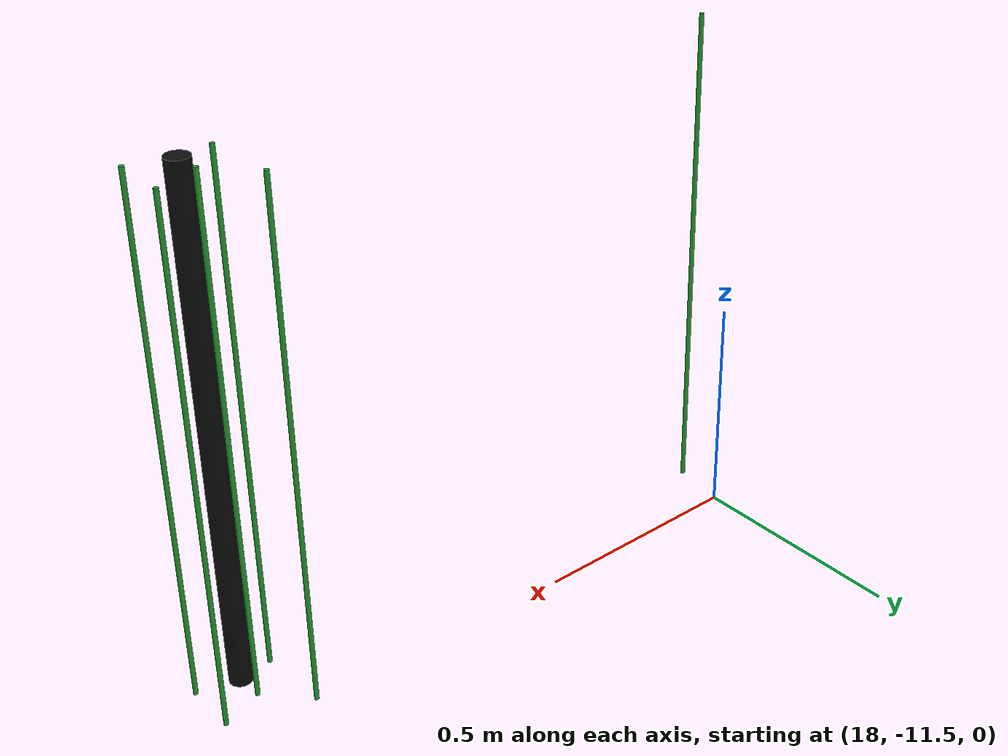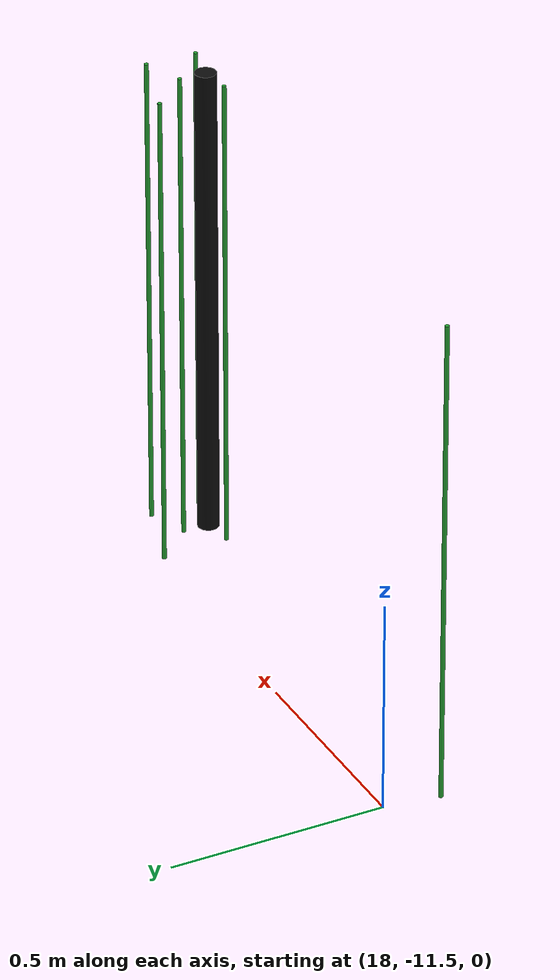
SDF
<sdf version="1.6">
 <world name="default">
  <model name="pole_9">
   <static>1</static>
   <pose>19.19 -11.68 0.575 0 -0 0</pose>
   <link name="link">
    <collision name="collision">
     <geometry><cylinder><length>1.15</length><radius>0.025</radius></cylinder></geometry>
    </collision>
    <visual name="visual">
     <geometry><cylinder><length>1.15</length><radius>0.025</radius></cylinder></geometry>
     <material>
      <script><uri>file://media/materials/scripts/gazebo.material</uri><name>Gazebo/Chrome</name></script>
      <shader type="vertex"><normal_map>__default__</normal_map></shader>
      <emissive>0.1 0.1 0.1 1</emissive>
      <specular>0.01 0.01 0.01 1</specular>
      <ambient>0.5 0.5 0.5 1</ambient>
      <diffuse>0.05 0.05 0.05 1</diffuse>
     </material>
    </visual>
   </link>
  </model>
  <model name="pole_27_clone_clone_4">
   <link name="link">
    <inertial>
     <mass>1</mass>
     <inertia><ixx>1</ixx><ixy>0</ixy><ixz>0</ixz><iyy>1</iyy><iyz>0</iyz><izz>1</izz></inertia>
    </inertial>
    <visual name="visual">
     <geometry><cylinder><length>1.15</length><radius>0.005</radius></cylinder></geometry>
     <material>
      <script><uri>file://media/materials/scripts/gazebo.material</uri><name>Gazebo/Green</name></script>
      <shader type="vertex"><normal_map>__default__</normal_map></shader>
      <emissive>0 0.1 0 1</emissive>
      <specular>0 0.01 0 1</specular>
      <ambient>0 0.5 0 1</ambient>
      <diffuse>0 0.05 0 1</diffuse>
     </material>
    </visual>
    <collision name="collision">
     <geometry><cylinder><radius>0.005</radius><length>1.15</length></cylinder></geometry>
     <surface>
      <friction>
       <ode><mu>1</mu><mu2>1</mu2><fdir1>0 0 0</fdir1><slip1>0</slip1><slip2>0</slip2></ode>
       <torsional>
        <coefficient>1</coefficient>
        <patch_radius>0</patch_radius>
        <surface_radius>0</surface_radius>
        <use_patch_radius>1</use_patch_radius>
        <ode><slip>0</slip></ode>
       </torsional>
      </friction>
      <bounce><restitution_coefficient>0</restitution_coefficient><threshold>1e+06</threshold></bounce>
      <contact>
       <collide_without_contact>0</collide_without_contact>
       <collide_without_contact_bitmask>1</collide_without_contact_bitmask>
       <collide_bitmask>1</collide_bitmask>
       <ode>
        <soft_cfm>0</soft_cfm>
        <soft_erp>0.2</soft_erp>
        <kp>1e+13</kp>
        <kd>1</kd>
        <max_vel>0.01</max_vel>
        <min_depth>0</min_depth>
       </ode>
       <bullet>
        <split_impulse>1</split_impulse>
        <split_impulse_penetration_threshold>-0.01</split_impulse_penetration_threshold>
        <soft_cfm>0</soft_cfm>
        <soft_erp>0.2</soft_erp>
        <kp>1e+13</kp>
        <kd>1</kd>
       </bullet>
      </contact>
     </surface>
    </collision>
   </link>
   <static>1</static>
   <pose>17.9803 -11.6278 0.575 0 -0 0</pose>
  </model>
  <model name="pole_27_clone_clone_85">
   <link name="link">
    <inertial>
     <mass>1</mass>
     <inertia><ixx>1</ixx><ixy>0</ixy><ixz>0</ixz><iyy>1</iyy><iyz>0</iyz><izz>1</izz></inertia>
    </inertial>
    <visual name="visual">
     <geometry><cylinder><length>1.15</length><radius>0.005</radius></cylinder></geometry>
     <material>
      <script><uri>file://media/materials/scripts/gazebo.material</uri><name>Gazebo/Green</name></script>
      <shader type="vertex"><normal_map>__default__</normal_map></shader>
      <emissive>0 0.1 0 1</emissive>
      <specular>0 0.01 0 1</specular>
      <ambient>0 0.5 0 1</ambient>
      <diffuse>0 0.05 0 1</diffuse>
     </material>
    </visual>
    <collision name="collision">
     <geometry><cylinder><radius>0.005</radius><length>1.15</length></cylinder></geometry>
     <surface>
      <friction>
       <ode><mu>1</mu><mu2>1</mu2><fdir1>0 0 0</fdir1><slip1>0</slip1><slip2>0</slip2></ode>
       <torsional>
        <coefficient>1</coefficient>
        <patch_radius>0</patch_radius>
        <surface_radius>0</surface_radius>
        <use_patch_radius>1</use_patch_radius>
        <ode><slip>0</slip></ode>
       </torsional>
      </friction>
      <bounce><restitution_coefficient>0</restitution_coefficient><threshold>1e+06</threshold></bounce>
      <contact>
       <collide_without_contact>0</collide_without_contact>
       <collide_without_contact_bitmask>1</collide_without_contact_bitmask>
       <collide_bitmask>1</collide_bitmask>
       <ode>
        <soft_cfm>0</soft_cfm>
        <soft_erp>0.2</soft_erp>
        <kp>1e+13</kp>
        <kd>1</kd>
        <max_vel>0.01</max_vel>
        <min_depth>0</min_depth>
       </ode>
       <bullet>
        <split_impulse>1</split_impulse>
        <split_impulse_penetration_threshold>-0.01</split_impulse_penetration_threshold>
        <soft_cfm>0</soft_cfm>
        <soft_erp>0.2</soft_erp>
        <kp>1e+13</kp>
        <kd>1</kd>
       </bullet>
      </contact>
     </surface>
    </collision>
   </link>
   <static>1</static>
   <pose>19.1162 -11.6885 0.575 0 -0 0</pose>
  </model>
  <model name="pole_27_clone_clone_86">
   <link name="link">
    <inertial>
     <mass>1</mass>
     <inertia><ixx>1</ixx><ixy>0</ixy><ixz>0</ixz><iyy>1</iyy><iyz>0</iyz><izz>1</izz></inertia>
    </inertial>
    <visual name="visual">
     <geometry><cylinder><length>1.15</length><radius>0.005</radius></cylinder></geometry>
     <material>
      <script><uri>file://media/materials/scripts/gazebo.material</uri><name>Gazebo/Green</name></script>
      <shader type="vertex"><normal_map>__default__</normal_map></shader>
      <emissive>0 0.1 0 1</emissive>
      <specular>0 0.01 0 1</specular>
      <ambient>0 0.5 0 1</ambient>
      <diffuse>0 0.05 0 1</diffuse>
     </material>
    </visual>
    <collision name="collision">
     <geometry><cylinder><radius>0.005</radius><length>1.15</length></cylinder></geometry>
     <surface>
      <friction>
       <ode><mu>1</mu><mu2>1</mu2><fdir1>0 0 0</fdir1><slip1>0</slip1><slip2>0</slip2></ode>
       <torsional>
        <coefficient>1</coefficient>
        <patch_radius>0</patch_radius>
        <surface_radius>0</surface_radius>
        <use_patch_radius>1</use_patch_radius>
        <ode><slip>0</slip></ode>
       </torsional>
      </friction>
      <bounce><restitution_coefficient>0</restitution_coefficient><threshold>1e+06</threshold></bounce>
      <contact>
       <collide_without_contact>0</collide_without_contact>
       <collide_without_contact_bitmask>1</collide_without_contact_bitmask>
       <collide_bitmask>1</collide_bitmask>
       <ode>
        <soft_cfm>0</soft_cfm>
        <soft_erp>0.2</soft_erp>
        <kp>1e+13</kp>
        <kd>1</kd>
        <max_vel>0.01</max_vel>
        <min_depth>0</min_depth>
       </ode>
       <bullet>
        <split_impulse>1</split_impulse>
        <split_impulse_penetration_threshold>-0.01</split_impulse_penetration_threshold>
        <soft_cfm>0</soft_cfm>
        <soft_erp>0.2</soft_erp>
        <kp>1e+13</kp>
        <kd>1</kd>
       </bullet>
      </contact>
     </surface>
    </collision>
   </link>
   <static>1</static>
   <pose>19.2826 -11.7019 0.575 0 -0 0</pose>
  </model>
  <model name="pole_27_clone_clone_87">
   <link name="link">
    <inertial>
     <mass>1</mass>
     <inertia><ixx>1</ixx><ixy>0</ixy><ixz>0</ixz><iyy>1</iyy><iyz>0</iyz><izz>1</izz></inertia>
    </inertial>
    <visual name="visual">
     <geometry><cylinder><length>1.15</length><radius>0.005</radius></cylinder></geometry>
     <material>
      <script><uri>file://media/materials/scripts/gazebo.material</uri><name>Gazebo/Green</name></script>
      <shader type="vertex"><normal_map>__default__</normal_map></shader>
      <emissive>0 0.1 0 1</emissive>
      <specular>0 0.01 0 1</specular>
      <ambient>0 0.5 0 1</ambient>
      <diffuse>0 0.05 0 1</diffuse>
     </material>
    </visual>
    <collision name="collision">
     <geometry><cylinder><radius>0.005</radius><length>1.15</length></cylinder></geometry>
     <surface>
      <friction>
       <ode><mu>1</mu><mu2>1</mu2><fdir1>0 0 0</fdir1><slip1>0</slip1><slip2>0</slip2></ode>
       <torsional>
        <coefficient>1</coefficient>
        <patch_radius>0</patch_radius>
        <surface_radius>0</surface_radius>
        <use_patch_radius>1</use_patch_radius>
        <ode><slip>0</slip></ode>
       </torsional>
      </friction>
      <bounce><restitution_coefficient>0</restitution_coefficient><threshold>1e+06</threshold></bounce>
      <contact>
       <collide_without_contact>0</collide_without_contact>
       <collide_without_contact_bitmask>1</collide_without_contact_bitmask>
       <collide_bitmask>1</collide_bitmask>
       <ode>
        <soft_cfm>0</soft_cfm>
        <soft_erp>0.2</soft_erp>
        <kp>1e+13</kp>
        <kd>1</kd>
        <max_vel>0.01</max_vel>
        <min_depth>0</min_depth>
       </ode>
       <bullet>
        <split_impulse>1</split_impulse>
        <split_impulse_penetration_threshold>-0.01</split_impulse_penetration_threshold>
        <soft_cfm>0</soft_cfm>
        <soft_erp>0.2</soft_erp>
        <kp>1e+13</kp>
        <kd>1</kd>
       </bullet>
      </contact>
     </surface>
    </collision>
   </link>
   <static>1</static>
   <pose>19.284 -11.5833 0.575 0 -0 0</pose>
  </model>
  <model name="pole_27_clone_clone_88">
   <link name="link">
    <inertial>
     <mass>1</mass>
     <inertia><ixx>1</ixx><ixy>0</ixy><ixz>0</ixz><iyy>1</iyy><iyz>0</iyz><izz>1</izz></inertia>
    </inertial>
    <visual name="visual">
     <geometry><cylinder><length>1.15</length><radius>0.005</radius></cylinder></geometry>
     <material>
      <script><uri>file://media/materials/scripts/gazebo.material</uri><name>Gazebo/Green</name></script>
      <shader type="vertex"><normal_map>__default__</normal_map></shader>
      <emissive>0 0.1 0 1</emissive>
      <specular>0 0.01 0 1</specular>
      <ambient>0 0.5 0 1</ambient>
      <diffuse>0 0.05 0 1</diffuse>
     </material>
    </visual>
    <collision name="collision">
     <geometry><cylinder><radius>0.005</radius><length>1.15</length></cylinder></geometry>
     <surface>
      <friction>
       <ode><mu>1</mu><mu2>1</mu2><fdir1>0 0 0</fdir1><slip1>0</slip1><slip2>0</slip2></ode>
       <torsional>
        <coefficient>1</coefficient>
        <patch_radius>0</patch_radius>
        <surface_radius>0</surface_radius>
        <use_patch_radius>1</use_patch_radius>
        <ode><slip>0</slip></ode>
       </torsional>
      </friction>
      <bounce><restitution_coefficient>0</restitution_coefficient><threshold>1e+06</threshold></bounce>
      <contact>
       <collide_without_contact>0</collide_without_contact>
       <collide_without_contact_bitmask>1</collide_without_contact_bitmask>
       <collide_bitmask>1</collide_bitmask>
       <ode>
        <soft_cfm>0</soft_cfm>
        <soft_erp>0.2</soft_erp>
        <kp>1e+13</kp>
        <kd>1</kd>
        <max_vel>0.01</max_vel>
        <min_depth>0</min_depth>
       </ode>
       <bullet>
        <split_impulse>1</split_impulse>
        <split_impulse_penetration_threshold>-0.01</split_impulse_penetration_threshold>
        <soft_cfm>0</soft_cfm>
        <soft_erp>0.2</soft_erp>
        <kp>1e+13</kp>
        <kd>1</kd>
       </bullet>
      </contact>
     </surface>
    </collision>
   </link>
   <static>1</static>
   <pose>19.19 -11.6177 0.575 0 -0 0</pose>
  </model>
  <model name="pole_27_clone_clone_89">
   <link name="link">
    <inertial>
     <mass>1</mass>
     <inertia><ixx>1</ixx><ixy>0</ixy><ixz>0</ixz><iyy>1</iyy><iyz>0</iyz><izz>1</izz></inertia>
    </inertial>
    <visual name="visual">
     <geometry><cylinder><length>1.15</length><radius>0.005</radius></cylinder></geometry>
     <material>
      <script><uri>file://media/materials/scripts/gazebo.material</uri><name>Gazebo/Green</name></script>
      <shader type="vertex"><normal_map>__default__</normal_map></shader>
      <emissive>0 0.1 0 1</emissive>
      <specular>0 0.01 0 1</specular>
      <ambient>0 0.5 0 1</ambient>
      <diffuse>0 0.05 0 1</diffuse>
     </material>
    </visual>
    <collision name="collision">
     <geometry><cylinder><radius>0.005</radius><length>1.15</length></cylinder></geometry>
     <surface>
      <friction>
       <ode><mu>1</mu><mu2>1</mu2><fdir1>0 0 0</fdir1><slip1>0</slip1><slip2>0</slip2></ode>
       <torsional>
        <coefficient>1</coefficient>
        <patch_radius>0</patch_radius>
        <surface_radius>0</surface_radius>
        <use_patch_radius>1</use_patch_radius>
        <ode><slip>0</slip></ode>
       </torsional>
      </friction>
      <bounce><restitution_coefficient>0</restitution_coefficient><threshold>1e+06</threshold></bounce>
      <contact>
       <collide_without_contact>0</collide_without_contact>
       <collide_without_contact_bitmask>1</collide_without_contact_bitmask>
       <collide_bitmask>1</collide_bitmask>
       <ode>
        <soft_cfm>0</soft_cfm>
        <soft_erp>0.2</soft_erp>
        <kp>1e+13</kp>
        <kd>1</kd>
        <max_vel>0.01</max_vel>
        <min_depth>0</min_depth>
       </ode>
       <bullet>
        <split_impulse>1</split_impulse>
        <split_impulse_penetration_threshold>-0.01</split_impulse_penetration_threshold>
        <soft_cfm>0</soft_cfm>
        <soft_erp>0.2</soft_erp>
        <kp>1e+13</kp>
        <kd>1</kd>
       </bullet>
      </contact>
     </surface>
    </collision>
   </link>
   <static>1</static>
   <pose>19.1075 -11.529 0.575 0 -0 0</pose>
  </model>
 </world>
</sdf>
